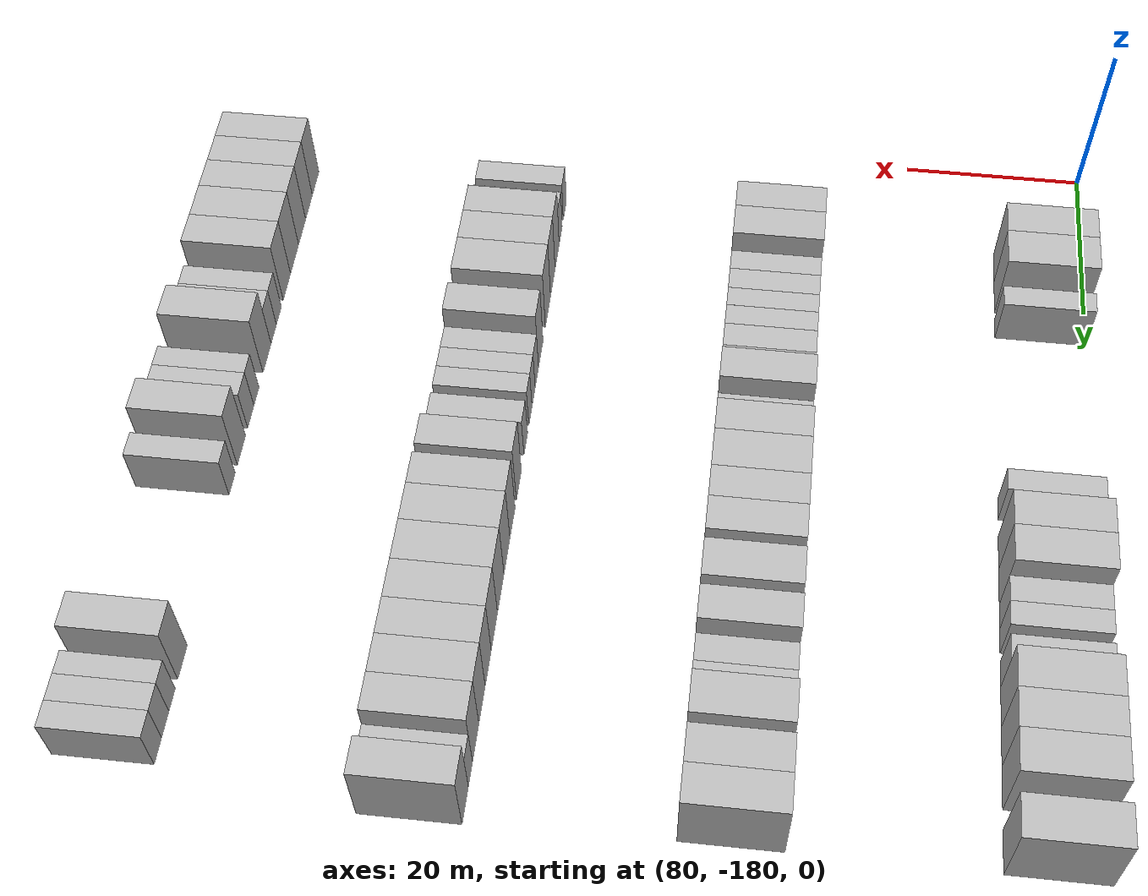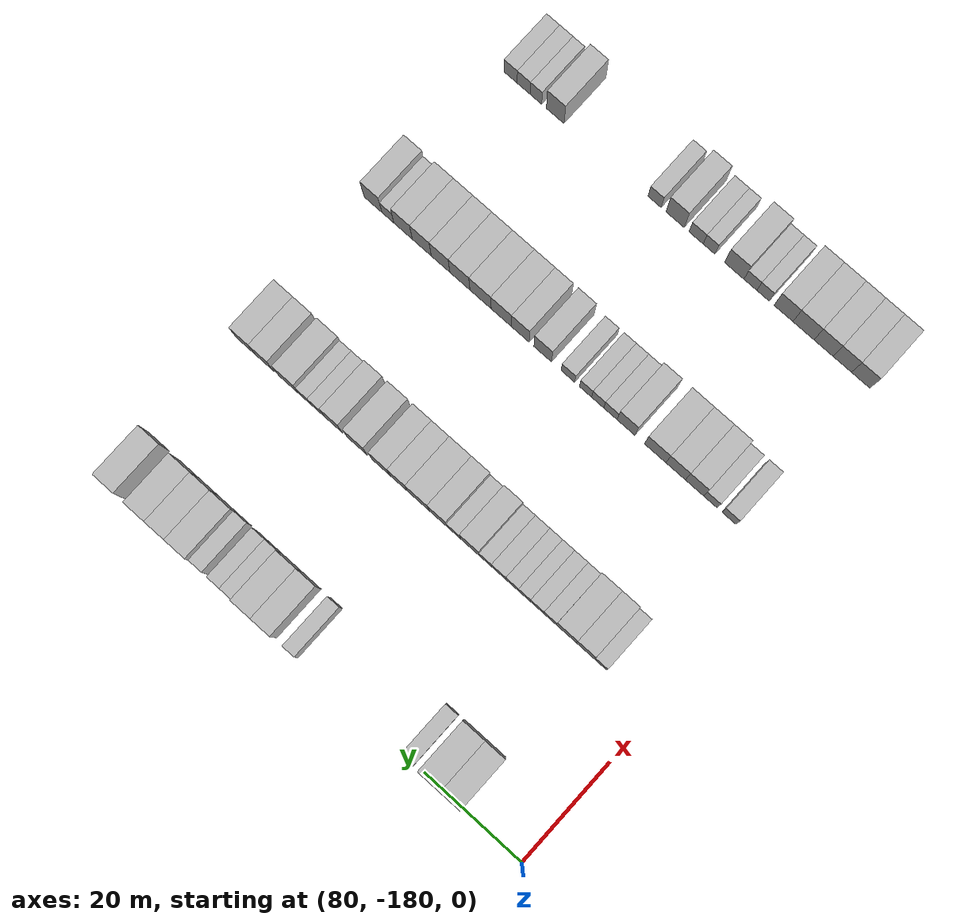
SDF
<sdf version="1.6">
 <world name="default">
  <model name="building_531">
   <static>1</static>
   <pose>85.0000 -165.6830 0 0.000000 0.000000 0.000000</pose>
   <link name="link">
    <pose>0 0 4.50 0 0 0</pose>
    <collision name="collision"><geometry><box><size>10.0000 4.0533 9.0000</size></box></geometry></collision>
    <visual name="visual">
     <cast_shadows>0</cast_shadows>
     <geometry><box><size>10.0000 4.0533 9.0000</size></box></geometry>
     <material>
      <script>
       <uri>model://HANNAS_wall/materials/scripts</uri>
       <uri>model://HANNAS_wall/materials/textures</uri>
       <name>vrc/HANNAS_wall</name>
      </script>
     </material>
    </visual>
   </link>
  </model>
  <model name="building_532">
   <static>1</static>
   <pose>85.0000 -161.4224 0 0.000000 0.000000 0.000000</pose>
   <link name="link">
    <pose>0 0 4.50 0 0 0</pose>
    <collision name="collision"><geometry><box><size>10.0000 4.4679 9.0000</size></box></geometry></collision>
    <visual name="visual">
     <cast_shadows>0</cast_shadows>
     <geometry><box><size>10.0000 4.4679 9.0000</size></box></geometry>
     <material>
      <script>
       <uri>model://HANNAS_wall/materials/scripts</uri>
       <uri>model://HANNAS_wall/materials/textures</uri>
       <name>vrc/HANNAS_wall</name>
      </script>
     </material>
    </visual>
   </link>
  </model>
  <model name="building_533">
   <static>1</static>
   <pose>85.0000 -156.8961 0 0.000000 0.000000 0.000000</pose>
   <link name="link">
    <pose>0 0 3.00 0 0 0</pose>
    <collision name="collision"><geometry><box><size>10.0000 2.5847 6.0000</size></box></geometry></collision>
    <visual name="visual">
     <cast_shadows>0</cast_shadows>
     <geometry><box><size>10.0000 2.5847 6.0000</size></box></geometry>
     <material>
      <script>
       <uri>model://HANNAS_wall/materials/scripts</uri>
       <uri>model://HANNAS_wall/materials/textures</uri>
       <name>vrc/HANNAS_wall</name>
      </script>
     </material>
    </visual>
   </link>
  </model>
  <model name="building_534">
   <static>1</static>
   <pose>85.0000 -132.8735 0 0.000000 0.000000 0.000000</pose>
   <link name="link">
    <pose>0 0 3.00 0 0 0</pose>
    <collision name="collision"><geometry><box><size>10.0000 2.4868 6.0000</size></box></geometry></collision>
    <visual name="visual">
     <cast_shadows>0</cast_shadows>
     <geometry><box><size>10.0000 2.4868 6.0000</size></box></geometry>
     <material>
      <script>
       <uri>model://HANNAS_wall/materials/scripts</uri>
       <uri>model://HANNAS_wall/materials/textures</uri>
       <name>vrc/HANNAS_wall</name>
      </script>
     </material>
    </visual>
   </link>
  </model>
  <model name="building_535">
   <static>1</static>
   <pose>85.0000 -127.6498 0 0.000000 0.000000 0.000000</pose>
   <link name="link">
    <pose>0 0 4.50 0 0 0</pose>
    <collision name="collision"><geometry><box><size>10.0000 3.9606 9.0000</size></box></geometry></collision>
    <visual name="visual">
     <cast_shadows>0</cast_shadows>
     <geometry><box><size>10.0000 3.9606 9.0000</size></box></geometry>
     <material>
      <script>
       <uri>model://HANNAS_wall/materials/scripts</uri>
       <uri>model://HANNAS_wall/materials/textures</uri>
       <name>vrc/HANNAS_wall</name>
      </script>
     </material>
    </visual>
   </link>
  </model>
  <model name="building_536">
   <static>1</static>
   <pose>85.0000 -123.6144 0 0.000000 0.000000 0.000000</pose>
   <link name="link">
    <pose>0 0 4.50 0 0 0</pose>
    <collision name="collision"><geometry><box><size>10.0000 4.1103 9.0000</size></box></geometry></collision>
    <visual name="visual">
     <cast_shadows>0</cast_shadows>
     <geometry><box><size>10.0000 4.1103 9.0000</size></box></geometry>
     <material>
      <script>
       <uri>model://HANNAS_wall/materials/scripts</uri>
       <uri>model://HANNAS_wall/materials/textures</uri>
       <name>vrc/HANNAS_wall</name>
      </script>
     </material>
    </visual>
   </link>
  </model>
  <model name="building_537">
   <static>1</static>
   <pose>85.0000 -120.1560 0 0.000000 0.000000 0.000000</pose>
   <link name="link">
    <pose>0 0 3.00 0 0 0</pose>
    <collision name="collision"><geometry><box><size>10.0000 2.8064 6.0000</size></box></geometry></collision>
    <visual name="visual">
     <cast_shadows>0</cast_shadows>
     <geometry><box><size>10.0000 2.8064 6.0000</size></box></geometry>
     <material>
      <script>
       <uri>model://HANNAS_wall/materials/scripts</uri>
       <uri>model://HANNAS_wall/materials/textures</uri>
       <name>vrc/HANNAS_wall</name>
      </script>
     </material>
    </visual>
   </link>
  </model>
  <model name="building_538">
   <static>1</static>
   <pose>85.0000 -117.4356 0 0.000000 0.000000 0.000000</pose>
   <link name="link">
    <pose>0 0 3.00 0 0 0</pose>
    <collision name="collision"><geometry><box><size>10.0000 2.6344 6.0000</size></box></geometry></collision>
    <visual name="visual">
     <cast_shadows>0</cast_shadows>
     <geometry><box><size>10.0000 2.6344 6.0000</size></box></geometry>
     <material>
      <script>
       <uri>model://HANNAS_wall/materials/scripts</uri>
       <uri>model://HANNAS_wall/materials/textures</uri>
       <name>vrc/HANNAS_wall</name>
      </script>
     </material>
    </visual>
   </link>
  </model>
  <model name="building_539">
   <static>1</static>
   <pose>85.0000 -113.7351 0 0.000000 0.000000 0.000000</pose>
   <link name="link">
    <pose>0 0 3.00 0 0 0</pose>
    <collision name="collision"><geometry><box><size>10.0000 2.7667 6.0000</size></box></geometry></collision>
    <visual name="visual">
     <cast_shadows>0</cast_shadows>
     <geometry><box><size>10.0000 2.7667 6.0000</size></box></geometry>
     <material>
      <script>
       <uri>model://HANNAS_wall/materials/scripts</uri>
       <uri>model://HANNAS_wall/materials/textures</uri>
       <name>vrc/HANNAS_wall</name>
      </script>
     </material>
    </visual>
   </link>
  </model>
  <model name="building_540">
   <static>1</static>
   <pose>85.0000 -110.2106 0 0.000000 0.000000 0.000000</pose>
   <link name="link">
    <pose>0 0 4.50 0 0 0</pose>
    <collision name="collision"><geometry><box><size>10.0000 4.2823 9.0000</size></box></geometry></collision>
    <visual name="visual">
     <cast_shadows>0</cast_shadows>
     <geometry><box><size>10.0000 4.2823 9.0000</size></box></geometry>
     <material>
      <script>
       <uri>model://HANNAS_wall/materials/scripts</uri>
       <uri>model://HANNAS_wall/materials/textures</uri>
       <name>vrc/HANNAS_wall</name>
      </script>
     </material>
    </visual>
   </link>
  </model>
  <model name="building_541">
   <static>1</static>
   <pose>85.0000 -106.0403 0 0.000000 0.000000 0.000000</pose>
   <link name="link">
    <pose>0 0 4.50 0 0 0</pose>
    <collision name="collision"><geometry><box><size>10.0000 4.0582 9.0000</size></box></geometry></collision>
    <visual name="visual">
     <cast_shadows>0</cast_shadows>
     <geometry><box><size>10.0000 4.0582 9.0000</size></box></geometry>
     <material>
      <script>
       <uri>model://HANNAS_wall/materials/scripts</uri>
       <uri>model://HANNAS_wall/materials/textures</uri>
       <name>vrc/HANNAS_wall</name>
      </script>
     </material>
    </visual>
   </link>
  </model>
  <model name="building_542">
   <static>1</static>
   <pose>85.0000 -101.8307 0 0.000000 0.000000 0.000000</pose>
   <link name="link">
    <pose>0 0 4.50 0 0 0</pose>
    <collision name="collision"><geometry><box><size>10.0000 4.3610 9.0000</size></box></geometry></collision>
    <visual name="visual">
     <cast_shadows>0</cast_shadows>
     <geometry><box><size>10.0000 4.3610 9.0000</size></box></geometry>
     <material>
      <script>
       <uri>model://HANNAS_wall/materials/scripts</uri>
       <uri>model://HANNAS_wall/materials/textures</uri>
       <name>vrc/HANNAS_wall</name>
      </script>
     </material>
    </visual>
   </link>
  </model>
  <model name="building_543">
   <static>1</static>
   <pose>85.0000 -95.4989 0 0.000000 0.000000 0.000000</pose>
   <link name="link">
    <pose>0 0 4.50 0 0 0</pose>
    <collision name="collision"><geometry><box><size>10.0000 4.3027 9.0000</size></box></geometry></collision>
    <visual name="visual">
     <cast_shadows>0</cast_shadows>
     <geometry><box><size>10.0000 4.3027 9.0000</size></box></geometry>
     <material>
      <script>
       <uri>model://HANNAS_wall/materials/scripts</uri>
       <uri>model://HANNAS_wall/materials/textures</uri>
       <name>vrc/HANNAS_wall</name>
      </script>
     </material>
    </visual>
   </link>
  </model>
  <model name="building_762">
   <static>1</static>
   <pose>115.0000 -169.0345 0 0.000000 0.000000 0.000000</pose>
   <link name="link">
    <pose>0 0 3.00 0 0 0</pose>
    <collision name="collision"><geometry><box><size>10.0000 2.5603 6.0000</size></box></geometry></collision>
    <visual name="visual">
     <cast_shadows>0</cast_shadows>
     <geometry><box><size>10.0000 2.5603 6.0000</size></box></geometry>
     <material>
      <script>
       <uri>model://HANNAS_wall/materials/scripts</uri>
       <uri>model://HANNAS_wall/materials/textures</uri>
       <name>vrc/HANNAS_wall</name>
      </script>
     </material>
    </visual>
   </link>
  </model>
  <model name="building_763">
   <static>1</static>
   <pose>115.0000 -165.9474 0 0.000000 0.000000 0.000000</pose>
   <link name="link">
    <pose>0 0 4.50 0 0 0</pose>
    <collision name="collision"><geometry><box><size>10.0000 3.6140 9.0000</size></box></geometry></collision>
    <visual name="visual">
     <cast_shadows>0</cast_shadows>
     <geometry><box><size>10.0000 3.6140 9.0000</size></box></geometry>
     <material>
      <script>
       <uri>model://HANNAS_wall/materials/scripts</uri>
       <uri>model://HANNAS_wall/materials/textures</uri>
       <name>vrc/HANNAS_wall</name>
      </script>
     </material>
    </visual>
   </link>
  </model>
  <model name="building_764">
   <static>1</static>
   <pose>115.0000 -162.1148 0 0.000000 0.000000 0.000000</pose>
   <link name="link">
    <pose>0 0 4.50 0 0 0</pose>
    <collision name="collision"><geometry><box><size>10.0000 4.0513 9.0000</size></box></geometry></collision>
    <visual name="visual">
     <cast_shadows>0</cast_shadows>
     <geometry><box><size>10.0000 4.0513 9.0000</size></box></geometry>
     <material>
      <script>
       <uri>model://HANNAS_wall/materials/scripts</uri>
       <uri>model://HANNAS_wall/materials/textures</uri>
       <name>vrc/HANNAS_wall</name>
      </script>
     </material>
    </visual>
   </link>
  </model>
  <model name="building_765">
   <static>1</static>
   <pose>115.0000 -158.7991 0 0.000000 0.000000 0.000000</pose>
   <link name="link">
    <pose>0 0 3.00 0 0 0</pose>
    <collision name="collision"><geometry><box><size>10.0000 2.5800 6.0000</size></box></geometry></collision>
    <visual name="visual">
     <cast_shadows>0</cast_shadows>
     <geometry><box><size>10.0000 2.5800 6.0000</size></box></geometry>
     <material>
      <script>
       <uri>model://HANNAS_wall/materials/scripts</uri>
       <uri>model://HANNAS_wall/materials/textures</uri>
       <name>vrc/HANNAS_wall</name>
      </script>
     </material>
    </visual>
   </link>
  </model>
  <model name="building_766">
   <static>1</static>
   <pose>115.0000 -156.1440 0 0.000000 0.000000 0.000000</pose>
   <link name="link">
    <pose>0 0 3.00 0 0 0</pose>
    <collision name="collision"><geometry><box><size>10.0000 2.7303 6.0000</size></box></geometry></collision>
    <visual name="visual">
     <cast_shadows>0</cast_shadows>
     <geometry><box><size>10.0000 2.7303 6.0000</size></box></geometry>
     <material>
      <script>
       <uri>model://HANNAS_wall/materials/scripts</uri>
       <uri>model://HANNAS_wall/materials/textures</uri>
       <name>vrc/HANNAS_wall</name>
      </script>
     </material>
    </visual>
   </link>
  </model>
  <model name="building_767">
   <static>1</static>
   <pose>115.0000 -153.5578 0 0.000000 0.000000 0.000000</pose>
   <link name="link">
    <pose>0 0 3.00 0 0 0</pose>
    <collision name="collision"><geometry><box><size>10.0000 2.4422 6.0000</size></box></geometry></collision>
    <visual name="visual">
     <cast_shadows>0</cast_shadows>
     <geometry><box><size>10.0000 2.4422 6.0000</size></box></geometry>
     <material>
      <script>
       <uri>model://HANNAS_wall/materials/scripts</uri>
       <uri>model://HANNAS_wall/materials/textures</uri>
       <name>vrc/HANNAS_wall</name>
      </script>
     </material>
    </visual>
   </link>
  </model>
  <model name="building_768">
   <static>1</static>
   <pose>115.0000 -151.0572 0 0.000000 0.000000 0.000000</pose>
   <link name="link">
    <pose>0 0 3.00 0 0 0</pose>
    <collision name="collision"><geometry><box><size>10.0000 2.5588 6.0000</size></box></geometry></collision>
    <visual name="visual">
     <cast_shadows>0</cast_shadows>
     <geometry><box><size>10.0000 2.5588 6.0000</size></box></geometry>
     <material>
      <script>
       <uri>model://HANNAS_wall/materials/scripts</uri>
       <uri>model://HANNAS_wall/materials/textures</uri>
       <name>vrc/HANNAS_wall</name>
      </script>
     </material>
    </visual>
   </link>
  </model>
  <model name="building_769">
   <static>1</static>
   <pose>115.0000 -148.3055 0 0.000000 0.000000 0.000000</pose>
   <link name="link">
    <pose>0 0 3.00 0 0 0</pose>
    <collision name="collision"><geometry><box><size>10.0000 2.9447 6.0000</size></box></geometry></collision>
    <visual name="visual">
     <cast_shadows>0</cast_shadows>
     <geometry><box><size>10.0000 2.9447 6.0000</size></box></geometry>
     <material>
      <script>
       <uri>model://HANNAS_wall/materials/scripts</uri>
       <uri>model://HANNAS_wall/materials/textures</uri>
       <name>vrc/HANNAS_wall</name>
      </script>
     </material>
    </visual>
   </link>
  </model>
  <model name="building_770">
   <static>1</static>
   <pose>115.0000 -145.5641 0 0.000000 0.000000 0.000000</pose>
   <link name="link">
    <pose>0 0 3.00 0 0 0</pose>
    <collision name="collision"><geometry><box><size>10.0000 2.5381 6.0000</size></box></geometry></collision>
    <visual name="visual">
     <cast_shadows>0</cast_shadows>
     <geometry><box><size>10.0000 2.5381 6.0000</size></box></geometry>
     <material>
      <script>
       <uri>model://HANNAS_wall/materials/scripts</uri>
       <uri>model://HANNAS_wall/materials/textures</uri>
       <name>vrc/HANNAS_wall</name>
      </script>
     </material>
    </visual>
   </link>
  </model>
  <model name="building_771">
   <static>1</static>
   <pose>115.0000 -142.3627 0 0.000000 0.000000 0.000000</pose>
   <link name="link">
    <pose>0 0 4.50 0 0 0</pose>
    <collision name="collision"><geometry><box><size>10.0000 3.8648 9.0000</size></box></geometry></collision>
    <visual name="visual">
     <cast_shadows>0</cast_shadows>
     <geometry><box><size>10.0000 3.8648 9.0000</size></box></geometry>
     <material>
      <script>
       <uri>model://HANNAS_wall/materials/scripts</uri>
       <uri>model://HANNAS_wall/materials/textures</uri>
       <name>vrc/HANNAS_wall</name>
      </script>
     </material>
    </visual>
   </link>
  </model>
  <model name="building_772">
   <static>1</static>
   <pose>115.0000 -139.0420 0 0.000000 0.000000 0.000000</pose>
   <link name="link">
    <pose>0 0 3.00 0 0 0</pose>
    <collision name="collision"><geometry><box><size>10.0000 2.7765 6.0000</size></box></geometry></collision>
    <visual name="visual">
     <cast_shadows>0</cast_shadows>
     <geometry><box><size>10.0000 2.7765 6.0000</size></box></geometry>
     <material>
      <script>
       <uri>model://HANNAS_wall/materials/scripts</uri>
       <uri>model://HANNAS_wall/materials/textures</uri>
       <name>vrc/HANNAS_wall</name>
      </script>
     </material>
    </visual>
   </link>
  </model>
  <model name="building_773">
   <static>1</static>
   <pose>115.0000 -135.7646 0 0.000000 0.000000 0.000000</pose>
   <link name="link">
    <pose>0 0 4.50 0 0 0</pose>
    <collision name="collision"><geometry><box><size>10.0000 3.7782 9.0000</size></box></geometry></collision>
    <visual name="visual">
     <cast_shadows>0</cast_shadows>
     <geometry><box><size>10.0000 3.7782 9.0000</size></box></geometry>
     <material>
      <script>
       <uri>model://HANNAS_wall/materials/scripts</uri>
       <uri>model://HANNAS_wall/materials/textures</uri>
       <name>vrc/HANNAS_wall</name>
      </script>
     </material>
    </visual>
   </link>
  </model>
  <model name="building_774">
   <static>1</static>
   <pose>115.0000 -131.6339 0 0.000000 0.000000 0.000000</pose>
   <link name="link">
    <pose>0 0 4.50 0 0 0</pose>
    <collision name="collision"><geometry><box><size>10.0000 4.4832 9.0000</size></box></geometry></collision>
    <visual name="visual">
     <cast_shadows>0</cast_shadows>
     <geometry><box><size>10.0000 4.4832 9.0000</size></box></geometry>
     <material>
      <script>
       <uri>model://HANNAS_wall/materials/scripts</uri>
       <uri>model://HANNAS_wall/materials/textures</uri>
       <name>vrc/HANNAS_wall</name>
      </script>
     </material>
    </visual>
   </link>
  </model>
  <model name="building_775">
   <static>1</static>
   <pose>115.0000 -127.5766 0 0.000000 0.000000 0.000000</pose>
   <link name="link">
    <pose>0 0 4.50 0 0 0</pose>
    <collision name="collision"><geometry><box><size>10.0000 3.6315 9.0000</size></box></geometry></collision>
    <visual name="visual">
     <cast_shadows>0</cast_shadows>
     <geometry><box><size>10.0000 3.6315 9.0000</size></box></geometry>
     <material>
      <script>
       <uri>model://HANNAS_wall/materials/scripts</uri>
       <uri>model://HANNAS_wall/materials/textures</uri>
       <name>vrc/HANNAS_wall</name>
      </script>
     </material>
    </visual>
   </link>
  </model>
  <model name="building_776">
   <static>1</static>
   <pose>115.0000 -123.8385 0 0.000000 0.000000 0.000000</pose>
   <link name="link">
    <pose>0 0 4.50 0 0 0</pose>
    <collision name="collision"><geometry><box><size>10.0000 3.8446 9.0000</size></box></geometry></collision>
    <visual name="visual">
     <cast_shadows>0</cast_shadows>
     <geometry><box><size>10.0000 3.8446 9.0000</size></box></geometry>
     <material>
      <script>
       <uri>model://HANNAS_wall/materials/scripts</uri>
       <uri>model://HANNAS_wall/materials/textures</uri>
       <name>vrc/HANNAS_wall</name>
      </script>
     </material>
    </visual>
   </link>
  </model>
  <model name="building_777">
   <static>1</static>
   <pose>115.0000 -118.8134 0 0.000000 0.000000 0.000000</pose>
   <link name="link">
    <pose>0 0 4.50 0 0 0</pose>
    <collision name="collision"><geometry><box><size>10.0000 4.2056 9.0000</size></box></geometry></collision>
    <visual name="visual">
     <cast_shadows>0</cast_shadows>
     <geometry><box><size>10.0000 4.2056 9.0000</size></box></geometry>
     <material>
      <script>
       <uri>model://HANNAS_wall/materials/scripts</uri>
       <uri>model://HANNAS_wall/materials/textures</uri>
       <name>vrc/HANNAS_wall</name>
      </script>
     </material>
    </visual>
   </link>
  </model>
  <model name="building_778">
   <static>1</static>
   <pose>115.0000 -113.8431 0 0.000000 0.000000 0.000000</pose>
   <link name="link">
    <pose>0 0 4.50 0 0 0</pose>
    <collision name="collision"><geometry><box><size>10.0000 3.7350 9.0000</size></box></geometry></collision>
    <visual name="visual">
     <cast_shadows>0</cast_shadows>
     <geometry><box><size>10.0000 3.7350 9.0000</size></box></geometry>
     <material>
      <script>
       <uri>model://HANNAS_wall/materials/scripts</uri>
       <uri>model://HANNAS_wall/materials/textures</uri>
       <name>vrc/HANNAS_wall</name>
      </script>
     </material>
    </visual>
   </link>
  </model>
  <model name="building_779">
   <static>1</static>
   <pose>115.0000 -110.5127 0 0.000000 0.000000 0.000000</pose>
   <link name="link">
    <pose>0 0 3.00 0 0 0</pose>
    <collision name="collision"><geometry><box><size>10.0000 2.9259 6.0000</size></box></geometry></collision>
    <visual name="visual">
     <cast_shadows>0</cast_shadows>
     <geometry><box><size>10.0000 2.9259 6.0000</size></box></geometry>
     <material>
      <script>
       <uri>model://HANNAS_wall/materials/scripts</uri>
       <uri>model://HANNAS_wall/materials/textures</uri>
       <name>vrc/HANNAS_wall</name>
      </script>
     </material>
    </visual>
   </link>
  </model>
  <model name="building_780">
   <static>1</static>
   <pose>115.0000 -107.8321 0 0.000000 0.000000 0.000000</pose>
   <link name="link">
    <pose>0 0 3.00 0 0 0</pose>
    <collision name="collision"><geometry><box><size>10.0000 2.4352 6.0000</size></box></geometry></collision>
    <visual name="visual">
     <cast_shadows>0</cast_shadows>
     <geometry><box><size>10.0000 2.4352 6.0000</size></box></geometry>
     <material>
      <script>
       <uri>model://HANNAS_wall/materials/scripts</uri>
       <uri>model://HANNAS_wall/materials/textures</uri>
       <name>vrc/HANNAS_wall</name>
      </script>
     </material>
    </visual>
   </link>
  </model>
  <model name="building_781">
   <static>1</static>
   <pose>115.0000 -104.4119 0 0.000000 0.000000 0.000000</pose>
   <link name="link">
    <pose>0 0 4.50 0 0 0</pose>
    <collision name="collision"><geometry><box><size>10.0000 4.4053 9.0000</size></box></geometry></collision>
    <visual name="visual">
     <cast_shadows>0</cast_shadows>
     <geometry><box><size>10.0000 4.4053 9.0000</size></box></geometry>
     <material>
      <script>
       <uri>model://HANNAS_wall/materials/scripts</uri>
       <uri>model://HANNAS_wall/materials/textures</uri>
       <name>vrc/HANNAS_wall</name>
      </script>
     </material>
    </visual>
   </link>
  </model>
  <model name="building_782">
   <static>1</static>
   <pose>115.0000 -99.2649 0 0.000000 0.000000 0.000000</pose>
   <link name="link">
    <pose>0 0 4.50 0 0 0</pose>
    <collision name="collision"><geometry><box><size>10.0000 3.8888 9.0000</size></box></geometry></collision>
    <visual name="visual">
     <cast_shadows>0</cast_shadows>
     <geometry><box><size>10.0000 3.8888 9.0000</size></box></geometry>
     <material>
      <script>
       <uri>model://HANNAS_wall/materials/scripts</uri>
       <uri>model://HANNAS_wall/materials/textures</uri>
       <name>vrc/HANNAS_wall</name>
      </script>
     </material>
    </visual>
   </link>
  </model>
  <model name="building_783">
   <static>1</static>
   <pose>115.0000 -95.3284 0 0.000000 0.000000 0.000000</pose>
   <link name="link">
    <pose>0 0 4.50 0 0 0</pose>
    <collision name="collision"><geometry><box><size>10.0000 3.9842 9.0000</size></box></geometry></collision>
    <visual name="visual">
     <cast_shadows>0</cast_shadows>
     <geometry><box><size>10.0000 3.9842 9.0000</size></box></geometry>
     <material>
      <script>
       <uri>model://HANNAS_wall/materials/scripts</uri>
       <uri>model://HANNAS_wall/materials/textures</uri>
       <name>vrc/HANNAS_wall</name>
      </script>
     </material>
    </visual>
   </link>
  </model>
  <model name="building_987">
   <static>1</static>
   <pose>145.0000 -169.0668 0 0.000000 0.000000 0.000000</pose>
   <link name="link">
    <pose>0 0 3.00 0 0 0</pose>
    <collision name="collision"><geometry><box><size>10.0000 2.8390 6.0000</size></box></geometry></collision>
    <visual name="visual">
     <cast_shadows>0</cast_shadows>
     <geometry><box><size>10.0000 2.8390 6.0000</size></box></geometry>
     <material>
      <script>
       <uri>model://HANNAS_wall/materials/scripts</uri>
       <uri>model://HANNAS_wall/materials/textures</uri>
       <name>vrc/HANNAS_wall</name>
      </script>
     </material>
    </visual>
   </link>
  </model>
  <model name="building_988">
   <static>1</static>
   <pose>145.0000 -165.2632 0 0.000000 0.000000 0.000000</pose>
   <link name="link">
    <pose>0 0 3.00 0 0 0</pose>
    <collision name="collision"><geometry><box><size>10.0000 2.7683 6.0000</size></box></geometry></collision>
    <visual name="visual">
     <cast_shadows>0</cast_shadows>
     <geometry><box><size>10.0000 2.7683 6.0000</size></box></geometry>
     <material>
      <script>
       <uri>model://HANNAS_wall/materials/scripts</uri>
       <uri>model://HANNAS_wall/materials/textures</uri>
       <name>vrc/HANNAS_wall</name>
      </script>
     </material>
    </visual>
   </link>
  </model>
  <model name="building_989">
   <static>1</static>
   <pose>145.0000 -162.0242 0 0.000000 0.000000 0.000000</pose>
   <link name="link">
    <pose>0 0 4.50 0 0 0</pose>
    <collision name="collision"><geometry><box><size>10.0000 3.7097 9.0000</size></box></geometry></collision>
    <visual name="visual">
     <cast_shadows>0</cast_shadows>
     <geometry><box><size>10.0000 3.7097 9.0000</size></box></geometry>
     <material>
      <script>
       <uri>model://HANNAS_wall/materials/scripts</uri>
       <uri>model://HANNAS_wall/materials/textures</uri>
       <name>vrc/HANNAS_wall</name>
      </script>
     </material>
    </visual>
   </link>
  </model>
  <model name="building_990">
   <static>1</static>
   <pose>145.0000 -158.1749 0 0.000000 0.000000 0.000000</pose>
   <link name="link">
    <pose>0 0 4.50 0 0 0</pose>
    <collision name="collision"><geometry><box><size>10.0000 3.9887 9.0000</size></box></geometry></collision>
    <visual name="visual">
     <cast_shadows>0</cast_shadows>
     <geometry><box><size>10.0000 3.9887 9.0000</size></box></geometry>
     <material>
      <script>
       <uri>model://HANNAS_wall/materials/scripts</uri>
       <uri>model://HANNAS_wall/materials/textures</uri>
       <name>vrc/HANNAS_wall</name>
      </script>
     </material>
    </visual>
   </link>
  </model>
  <model name="building_991">
   <static>1</static>
   <pose>145.0000 -153.9627 0 0.000000 0.000000 0.000000</pose>
   <link name="link">
    <pose>0 0 4.50 0 0 0</pose>
    <collision name="collision"><geometry><box><size>10.0000 4.4357 9.0000</size></box></geometry></collision>
    <visual name="visual">
     <cast_shadows>0</cast_shadows>
     <geometry><box><size>10.0000 4.4357 9.0000</size></box></geometry>
     <material>
      <script>
       <uri>model://HANNAS_wall/materials/scripts</uri>
       <uri>model://HANNAS_wall/materials/textures</uri>
       <name>vrc/HANNAS_wall</name>
      </script>
     </material>
    </visual>
   </link>
  </model>
  <model name="building_992">
   <static>1</static>
   <pose>145.0000 -147.9021 0 0.000000 0.000000 0.000000</pose>
   <link name="link">
    <pose>0 0 4.50 0 0 0</pose>
    <collision name="collision"><geometry><box><size>10.0000 3.6855 9.0000</size></box></geometry></collision>
    <visual name="visual">
     <cast_shadows>0</cast_shadows>
     <geometry><box><size>10.0000 3.6855 9.0000</size></box></geometry>
     <material>
      <script>
       <uri>model://HANNAS_wall/materials/scripts</uri>
       <uri>model://HANNAS_wall/materials/textures</uri>
       <name>vrc/HANNAS_wall</name>
      </script>
     </material>
    </visual>
   </link>
  </model>
  <model name="building_993">
   <static>1</static>
   <pose>145.0000 -144.6782 0 0.000000 0.000000 0.000000</pose>
   <link name="link">
    <pose>0 0 3.00 0 0 0</pose>
    <collision name="collision"><geometry><box><size>10.0000 2.7621 6.0000</size></box></geometry></collision>
    <visual name="visual">
     <cast_shadows>0</cast_shadows>
     <geometry><box><size>10.0000 2.7621 6.0000</size></box></geometry>
     <material>
      <script>
       <uri>model://HANNAS_wall/materials/scripts</uri>
       <uri>model://HANNAS_wall/materials/textures</uri>
       <name>vrc/HANNAS_wall</name>
      </script>
     </material>
    </visual>
   </link>
  </model>
  <model name="building_994">
   <static>1</static>
   <pose>145.0000 -142.0258 0 0.000000 0.000000 0.000000</pose>
   <link name="link">
    <pose>0 0 3.00 0 0 0</pose>
    <collision name="collision"><geometry><box><size>10.0000 2.5426 6.0000</size></box></geometry></collision>
    <visual name="visual">
     <cast_shadows>0</cast_shadows>
     <geometry><box><size>10.0000 2.5426 6.0000</size></box></geometry>
     <material>
      <script>
       <uri>model://HANNAS_wall/materials/scripts</uri>
       <uri>model://HANNAS_wall/materials/textures</uri>
       <name>vrc/HANNAS_wall</name>
      </script>
     </material>
    </visual>
   </link>
  </model>
  <model name="building_995">
   <static>1</static>
   <pose>145.0000 -139.5014 0 0.000000 0.000000 0.000000</pose>
   <link name="link">
    <pose>0 0 3.00 0 0 0</pose>
    <collision name="collision"><geometry><box><size>10.0000 2.5063 6.0000</size></box></geometry></collision>
    <visual name="visual">
     <cast_shadows>0</cast_shadows>
     <geometry><box><size>10.0000 2.5063 6.0000</size></box></geometry>
     <material>
      <script>
       <uri>model://HANNAS_wall/materials/scripts</uri>
       <uri>model://HANNAS_wall/materials/textures</uri>
       <name>vrc/HANNAS_wall</name>
      </script>
     </material>
    </visual>
   </link>
  </model>
  <model name="building_996">
   <static>1</static>
   <pose>145.0000 -135.8341 0 0.000000 0.000000 0.000000</pose>
   <link name="link">
    <pose>0 0 3.00 0 0 0</pose>
    <collision name="collision"><geometry><box><size>10.0000 2.8283 6.0000</size></box></geometry></collision>
    <visual name="visual">
     <cast_shadows>0</cast_shadows>
     <geometry><box><size>10.0000 2.8283 6.0000</size></box></geometry>
     <material>
      <script>
       <uri>model://HANNAS_wall/materials/scripts</uri>
       <uri>model://HANNAS_wall/materials/textures</uri>
       <name>vrc/HANNAS_wall</name>
      </script>
     </material>
    </visual>
   </link>
  </model>
  <model name="building_997">
   <static>1</static>
   <pose>145.0000 -130.5733 0 0.000000 0.000000 0.000000</pose>
   <link name="link">
    <pose>0 0 4.50 0 0 0</pose>
    <collision name="collision"><geometry><box><size>10.0000 3.6934 9.0000</size></box></geometry></collision>
    <visual name="visual">
     <cast_shadows>0</cast_shadows>
     <geometry><box><size>10.0000 3.6934 9.0000</size></box></geometry>
     <material>
      <script>
       <uri>model://HANNAS_wall/materials/scripts</uri>
       <uri>model://HANNAS_wall/materials/textures</uri>
       <name>vrc/HANNAS_wall</name>
      </script>
     </material>
    </visual>
   </link>
  </model>
  <model name="building_998">
   <static>1</static>
   <pose>145.0000 -125.8766 0 0.000000 0.000000 0.000000</pose>
   <link name="link">
    <pose>0 0 4.50 0 0 0</pose>
    <collision name="collision"><geometry><box><size>10.0000 3.6999 9.0000</size></box></geometry></collision>
    <visual name="visual">
     <cast_shadows>0</cast_shadows>
     <geometry><box><size>10.0000 3.6999 9.0000</size></box></geometry>
     <material>
      <script>
       <uri>model://HANNAS_wall/materials/scripts</uri>
       <uri>model://HANNAS_wall/materials/textures</uri>
       <name>vrc/HANNAS_wall</name>
      </script>
     </material>
    </visual>
   </link>
  </model>
  <model name="building_999">
   <static>1</static>
   <pose>145.0000 -121.8962 0 0.000000 0.000000 0.000000</pose>
   <link name="link">
    <pose>0 0 4.50 0 0 0</pose>
    <collision name="collision"><geometry><box><size>10.0000 4.2609 9.0000</size></box></geometry></collision>
    <visual name="visual">
     <cast_shadows>0</cast_shadows>
     <geometry><box><size>10.0000 4.2609 9.0000</size></box></geometry>
     <material>
      <script>
       <uri>model://HANNAS_wall/materials/scripts</uri>
       <uri>model://HANNAS_wall/materials/textures</uri>
       <name>vrc/HANNAS_wall</name>
      </script>
     </material>
    </visual>
   </link>
  </model>
  <model name="building_1000">
   <static>1</static>
   <pose>145.0000 -117.5249 0 0.000000 0.000000 0.000000</pose>
   <link name="link">
    <pose>0 0 4.50 0 0 0</pose>
    <collision name="collision"><geometry><box><size>10.0000 4.4818 9.0000</size></box></geometry></collision>
    <visual name="visual">
     <cast_shadows>0</cast_shadows>
     <geometry><box><size>10.0000 4.4818 9.0000</size></box></geometry>
     <material>
      <script>
       <uri>model://HANNAS_wall/materials/scripts</uri>
       <uri>model://HANNAS_wall/materials/textures</uri>
       <name>vrc/HANNAS_wall</name>
      </script>
     </material>
    </visual>
   </link>
  </model>
  <model name="building_1001">
   <static>1</static>
   <pose>145.0000 -113.1701 0 0.000000 0.000000 0.000000</pose>
   <link name="link">
    <pose>0 0 4.50 0 0 0</pose>
    <collision name="collision"><geometry><box><size>10.0000 4.2278 9.0000</size></box></geometry></collision>
    <visual name="visual">
     <cast_shadows>0</cast_shadows>
     <geometry><box><size>10.0000 4.2278 9.0000</size></box></geometry>
     <material>
      <script>
       <uri>model://HANNAS_wall/materials/scripts</uri>
       <uri>model://HANNAS_wall/materials/textures</uri>
       <name>vrc/HANNAS_wall</name>
      </script>
     </material>
    </visual>
   </link>
  </model>
  <model name="building_1002">
   <static>1</static>
   <pose>145.0000 -109.0864 0 0.000000 0.000000 0.000000</pose>
   <link name="link">
    <pose>0 0 4.50 0 0 0</pose>
    <collision name="collision"><geometry><box><size>10.0000 3.9396 9.0000</size></box></geometry></collision>
    <visual name="visual">
     <cast_shadows>0</cast_shadows>
     <geometry><box><size>10.0000 3.9396 9.0000</size></box></geometry>
     <material>
      <script>
       <uri>model://HANNAS_wall/materials/scripts</uri>
       <uri>model://HANNAS_wall/materials/textures</uri>
       <name>vrc/HANNAS_wall</name>
      </script>
     </material>
    </visual>
   </link>
  </model>
  <model name="building_1003">
   <static>1</static>
   <pose>145.0000 -105.1073 0 0.000000 0.000000 0.000000</pose>
   <link name="link">
    <pose>0 0 4.50 0 0 0</pose>
    <collision name="collision"><geometry><box><size>10.0000 4.0187 9.0000</size></box></geometry></collision>
    <visual name="visual">
     <cast_shadows>0</cast_shadows>
     <geometry><box><size>10.0000 4.0187 9.0000</size></box></geometry>
     <material>
      <script>
       <uri>model://HANNAS_wall/materials/scripts</uri>
       <uri>model://HANNAS_wall/materials/textures</uri>
       <name>vrc/HANNAS_wall</name>
      </script>
     </material>
    </visual>
   </link>
  </model>
  <model name="building_1004">
   <static>1</static>
   <pose>145.0000 -101.1270 0 0.000000 0.000000 0.000000</pose>
   <link name="link">
    <pose>0 0 4.50 0 0 0</pose>
    <collision name="collision"><geometry><box><size>10.0000 3.9418 9.0000</size></box></geometry></collision>
    <visual name="visual">
     <cast_shadows>0</cast_shadows>
     <geometry><box><size>10.0000 3.9418 9.0000</size></box></geometry>
     <material>
      <script>
       <uri>model://HANNAS_wall/materials/scripts</uri>
       <uri>model://HANNAS_wall/materials/textures</uri>
       <name>vrc/HANNAS_wall</name>
      </script>
     </material>
    </visual>
   </link>
  </model>
  <model name="building_1005">
   <static>1</static>
   <pose>145.0000 -97.8773 0 0.000000 0.000000 0.000000</pose>
   <link name="link">
    <pose>0 0 3.00 0 0 0</pose>
    <collision name="collision"><geometry><box><size>10.0000 2.5577 6.0000</size></box></geometry></collision>
    <visual name="visual">
     <cast_shadows>0</cast_shadows>
     <geometry><box><size>10.0000 2.5577 6.0000</size></box></geometry>
     <material>
      <script>
       <uri>model://HANNAS_wall/materials/scripts</uri>
       <uri>model://HANNAS_wall/materials/textures</uri>
       <name>vrc/HANNAS_wall</name>
      </script>
     </material>
    </visual>
   </link>
  </model>
  <model name="building_1006">
   <static>1</static>
   <pose>145.0000 -94.7092 0 0.000000 0.000000 0.000000</pose>
   <link name="link">
    <pose>0 0 4.50 0 0 0</pose>
    <collision name="collision"><geometry><box><size>10.0000 3.7784 9.0000</size></box></geometry></collision>
    <visual name="visual">
     <cast_shadows>0</cast_shadows>
     <geometry><box><size>10.0000 3.7784 9.0000</size></box></geometry>
     <material>
      <script>
       <uri>model://HANNAS_wall/materials/scripts</uri>
       <uri>model://HANNAS_wall/materials/textures</uri>
       <name>vrc/HANNAS_wall</name>
      </script>
     </material>
    </visual>
   </link>
  </model>
  <model name="building_1215">
   <static>1</static>
   <pose>175.0000 -170.2371 0 0.000000 0.000000 0.000000</pose>
   <link name="link">
    <pose>0 0 4.50 0 0 0</pose>
    <collision name="collision"><geometry><box><size>10.0000 3.7631 9.0000</size></box></geometry></collision>
    <visual name="visual">
     <cast_shadows>0</cast_shadows>
     <geometry><box><size>10.0000 3.7631 9.0000</size></box></geometry>
     <material>
      <script>
       <uri>model://HANNAS_wall/materials/scripts</uri>
       <uri>model://HANNAS_wall/materials/textures</uri>
       <name>vrc/HANNAS_wall</name>
      </script>
     </material>
    </visual>
   </link>
  </model>
  <model name="building_1216">
   <static>1</static>
   <pose>175.0000 -166.4558 0 0.000000 0.000000 0.000000</pose>
   <link name="link">
    <pose>0 0 4.50 0 0 0</pose>
    <collision name="collision"><geometry><box><size>10.0000 3.7994 9.0000</size></box></geometry></collision>
    <visual name="visual">
     <cast_shadows>0</cast_shadows>
     <geometry><box><size>10.0000 3.7994 9.0000</size></box></geometry>
     <material>
      <script>
       <uri>model://HANNAS_wall/materials/scripts</uri>
       <uri>model://HANNAS_wall/materials/textures</uri>
       <name>vrc/HANNAS_wall</name>
      </script>
     </material>
    </visual>
   </link>
  </model>
  <model name="building_1217">
   <static>1</static>
   <pose>175.0000 -162.6014 0 0.000000 0.000000 0.000000</pose>
   <link name="link">
    <pose>0 0 4.50 0 0 0</pose>
    <collision name="collision"><geometry><box><size>10.0000 3.9094 9.0000</size></box></geometry></collision>
    <visual name="visual">
     <cast_shadows>0</cast_shadows>
     <geometry><box><size>10.0000 3.9094 9.0000</size></box></geometry>
     <material>
      <script>
       <uri>model://HANNAS_wall/materials/scripts</uri>
       <uri>model://HANNAS_wall/materials/textures</uri>
       <name>vrc/HANNAS_wall</name>
      </script>
     </material>
    </visual>
   </link>
  </model>
  <model name="building_1218">
   <static>1</static>
   <pose>175.0000 -158.4711 0 0.000000 0.000000 0.000000</pose>
   <link name="link">
    <pose>0 0 4.50 0 0 0</pose>
    <collision name="collision"><geometry><box><size>10.0000 4.3512 9.0000</size></box></geometry></collision>
    <visual name="visual">
     <cast_shadows>0</cast_shadows>
     <geometry><box><size>10.0000 4.3512 9.0000</size></box></geometry>
     <material>
      <script>
       <uri>model://HANNAS_wall/materials/scripts</uri>
       <uri>model://HANNAS_wall/materials/textures</uri>
       <name>vrc/HANNAS_wall</name>
      </script>
     </material>
    </visual>
   </link>
  </model>
  <model name="building_1219">
   <static>1</static>
   <pose>175.0000 -154.3494 0 0.000000 0.000000 0.000000</pose>
   <link name="link">
    <pose>0 0 4.50 0 0 0</pose>
    <collision name="collision"><geometry><box><size>10.0000 3.8922 9.0000</size></box></geometry></collision>
    <visual name="visual">
     <cast_shadows>0</cast_shadows>
     <geometry><box><size>10.0000 3.8922 9.0000</size></box></geometry>
     <material>
      <script>
       <uri>model://HANNAS_wall/materials/scripts</uri>
       <uri>model://HANNAS_wall/materials/textures</uri>
       <name>vrc/HANNAS_wall</name>
      </script>
     </material>
    </visual>
   </link>
  </model>
  <model name="building_1220">
   <static>1</static>
   <pose>175.0000 -150.1277 0 0.000000 0.000000 0.000000</pose>
   <link name="link">
    <pose>0 0 3.00 0 0 0</pose>
    <collision name="collision"><geometry><box><size>10.0000 2.5511 6.0000</size></box></geometry></collision>
    <visual name="visual">
     <cast_shadows>0</cast_shadows>
     <geometry><box><size>10.0000 2.5511 6.0000</size></box></geometry>
     <material>
      <script>
       <uri>model://HANNAS_wall/materials/scripts</uri>
       <uri>model://HANNAS_wall/materials/textures</uri>
       <name>vrc/HANNAS_wall</name>
      </script>
     </material>
    </visual>
   </link>
  </model>
  <model name="building_1221">
   <static>1</static>
   <pose>175.0000 -147.4997 0 0.000000 0.000000 0.000000</pose>
   <link name="link">
    <pose>0 0 3.00 0 0 0</pose>
    <collision name="collision"><geometry><box><size>10.0000 2.7049 6.0000</size></box></geometry></collision>
    <visual name="visual">
     <cast_shadows>0</cast_shadows>
     <geometry><box><size>10.0000 2.7049 6.0000</size></box></geometry>
     <material>
      <script>
       <uri>model://HANNAS_wall/materials/scripts</uri>
       <uri>model://HANNAS_wall/materials/textures</uri>
       <name>vrc/HANNAS_wall</name>
      </script>
     </material>
    </visual>
   </link>
  </model>
  <model name="building_1222">
   <static>1</static>
   <pose>175.0000 -144.1374 0 0.000000 0.000000 0.000000</pose>
   <link name="link">
    <pose>0 0 4.50 0 0 0</pose>
    <collision name="collision"><geometry><box><size>10.0000 4.0198 9.0000</size></box></geometry></collision>
    <visual name="visual">
     <cast_shadows>0</cast_shadows>
     <geometry><box><size>10.0000 4.0198 9.0000</size></box></geometry>
     <material>
      <script>
       <uri>model://HANNAS_wall/materials/scripts</uri>
       <uri>model://HANNAS_wall/materials/textures</uri>
       <name>vrc/HANNAS_wall</name>
      </script>
     </material>
    </visual>
   </link>
  </model>
  <model name="building_1223">
   <static>1</static>
   <pose>175.0000 -138.9004 0 0.000000 0.000000 0.000000</pose>
   <link name="link">
    <pose>0 0 3.00 0 0 0</pose>
    <collision name="collision"><geometry><box><size>10.0000 2.4541 6.0000</size></box></geometry></collision>
    <visual name="visual">
     <cast_shadows>0</cast_shadows>
     <geometry><box><size>10.0000 2.4541 6.0000</size></box></geometry>
     <material>
      <script>
       <uri>model://HANNAS_wall/materials/scripts</uri>
       <uri>model://HANNAS_wall/materials/textures</uri>
       <name>vrc/HANNAS_wall</name>
      </script>
     </material>
    </visual>
   </link>
  </model>
  <model name="building_1224">
   <static>1</static>
   <pose>175.0000 -136.1837 0 0.000000 0.000000 0.000000</pose>
   <link name="link">
    <pose>0 0 3.00 0 0 0</pose>
    <collision name="collision"><geometry><box><size>10.0000 2.9792 6.0000</size></box></geometry></collision>
    <visual name="visual">
     <cast_shadows>0</cast_shadows>
     <geometry><box><size>10.0000 2.9792 6.0000</size></box></geometry>
     <material>
      <script>
       <uri>model://HANNAS_wall/materials/scripts</uri>
       <uri>model://HANNAS_wall/materials/textures</uri>
       <name>vrc/HANNAS_wall</name>
      </script>
     </material>
    </visual>
   </link>
  </model>
  <model name="building_1225">
   <static>1</static>
   <pose>175.0000 -131.7889 0 0.000000 0.000000 0.000000</pose>
   <link name="link">
    <pose>0 0 4.50 0 0 0</pose>
    <collision name="collision"><geometry><box><size>10.0000 3.8103 9.0000</size></box></geometry></collision>
    <visual name="visual">
     <cast_shadows>0</cast_shadows>
     <geometry><box><size>10.0000 3.8103 9.0000</size></box></geometry>
     <material>
      <script>
       <uri>model://HANNAS_wall/materials/scripts</uri>
       <uri>model://HANNAS_wall/materials/textures</uri>
       <name>vrc/HANNAS_wall</name>
      </script>
     </material>
    </visual>
   </link>
  </model>
  <model name="building_1226">
   <static>1</static>
   <pose>175.0000 -127.4980 0 0.000000 0.000000 0.000000</pose>
   <link name="link">
    <pose>0 0 3.00 0 0 0</pose>
    <collision name="collision"><geometry><box><size>10.0000 2.7716 6.0000</size></box></geometry></collision>
    <visual name="visual">
     <cast_shadows>0</cast_shadows>
     <geometry><box><size>10.0000 2.7716 6.0000</size></box></geometry>
     <material>
      <script>
       <uri>model://HANNAS_wall/materials/scripts</uri>
       <uri>model://HANNAS_wall/materials/textures</uri>
       <name>vrc/HANNAS_wall</name>
      </script>
     </material>
    </visual>
   </link>
  </model>
  <model name="building_1227">
   <static>1</static>
   <pose>175.0000 -106.4797 0 0.000000 0.000000 0.000000</pose>
   <link name="link">
    <pose>0 0 4.50 0 0 0</pose>
    <collision name="collision"><geometry><box><size>10.0000 3.7549 9.0000</size></box></geometry></collision>
    <visual name="visual">
     <cast_shadows>0</cast_shadows>
     <geometry><box><size>10.0000 3.7549 9.0000</size></box></geometry>
     <material>
      <script>
       <uri>model://HANNAS_wall/materials/scripts</uri>
       <uri>model://HANNAS_wall/materials/textures</uri>
       <name>vrc/HANNAS_wall</name>
      </script>
     </material>
    </visual>
   </link>
  </model>
  <model name="building_1228">
   <static>1</static>
   <pose>175.0000 -102.3826 0 0.000000 0.000000 0.000000</pose>
   <link name="link">
    <pose>0 0 3.00 0 0 0</pose>
    <collision name="collision"><geometry><box><size>10.0000 2.4393 6.0000</size></box></geometry></collision>
    <visual name="visual">
     <cast_shadows>0</cast_shadows>
     <geometry><box><size>10.0000 2.4393 6.0000</size></box></geometry>
     <material>
      <script>
       <uri>model://HANNAS_wall/materials/scripts</uri>
       <uri>model://HANNAS_wall/materials/textures</uri>
       <name>vrc/HANNAS_wall</name>
      </script>
     </material>
    </visual>
   </link>
  </model>
  <model name="building_1229">
   <static>1</static>
   <pose>175.0000 -99.7706 0 0.000000 0.000000 0.000000</pose>
   <link name="link">
    <pose>0 0 3.00 0 0 0</pose>
    <collision name="collision"><geometry><box><size>10.0000 2.7848 6.0000</size></box></geometry></collision>
    <visual name="visual">
     <cast_shadows>0</cast_shadows>
     <geometry><box><size>10.0000 2.7848 6.0000</size></box></geometry>
     <material>
      <script>
       <uri>model://HANNAS_wall/materials/scripts</uri>
       <uri>model://HANNAS_wall/materials/textures</uri>
       <name>vrc/HANNAS_wall</name>
      </script>
     </material>
    </visual>
   </link>
  </model>
  <model name="building_1230">
   <static>1</static>
   <pose>175.0000 -96.9949 0 0.000000 0.000000 0.000000</pose>
   <link name="link">
    <pose>0 0 3.00 0 0 0</pose>
    <collision name="collision"><geometry><box><size>10.0000 2.7666 6.0000</size></box></geometry></collision>
    <visual name="visual">
     <cast_shadows>0</cast_shadows>
     <geometry><box><size>10.0000 2.7666 6.0000</size></box></geometry>
     <material>
      <script>
       <uri>model://HANNAS_wall/materials/scripts</uri>
       <uri>model://HANNAS_wall/materials/textures</uri>
       <name>vrc/HANNAS_wall</name>
      </script>
     </material>
    </visual>
   </link>
  </model>
 </world>
</sdf>
